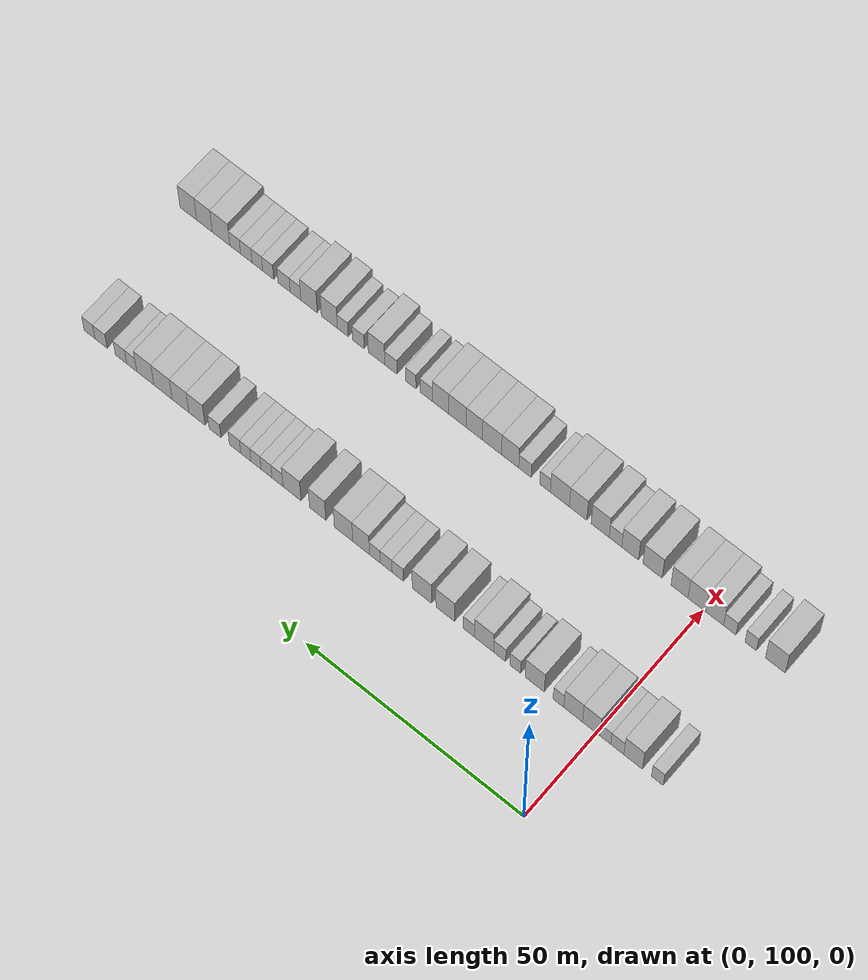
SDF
<sdf version="1.6">
 <world name="default">
  <model name="building_71">
   <static>1</static>
   <pose>25.0000 86.4063 0 0.000000 0.000000 0.000000</pose>
   <link name="link">
    <pose>0 0 3.00 0 0 0</pose>
    <collision name="collision"><geometry><box><size>10.0000 2.6438 6.0000</size></box></geometry></collision>
    <visual name="visual">
     <cast_shadows>0</cast_shadows>
     <geometry><box><size>10.0000 2.6438 6.0000</size></box></geometry>
     <material>
      <script>
       <uri>model://HANNAS_wall/materials/scripts</uri>
       <uri>model://HANNAS_wall/materials/textures</uri>
       <name>vrc/HANNAS_wall</name>
      </script>
     </material>
    </visual>
   </link>
  </model>
  <model name="building_72">
   <static>1</static>
   <pose>25.0000 91.8164 0 0.000000 0.000000 0.000000</pose>
   <link name="link">
    <pose>0 0 4.50 0 0 0</pose>
    <collision name="collision"><geometry><box><size>10.0000 4.1764 9.0000</size></box></geometry></collision>
    <visual name="visual">
     <cast_shadows>0</cast_shadows>
     <geometry><box><size>10.0000 4.1764 9.0000</size></box></geometry>
     <material>
      <script>
       <uri>model://HANNAS_wall/materials/scripts</uri>
       <uri>model://HANNAS_wall/materials/textures</uri>
       <name>vrc/HANNAS_wall</name>
      </script>
     </material>
    </visual>
   </link>
  </model>
  <model name="building_73">
   <static>1</static>
   <pose>25.0000 95.3622 0 0.000000 0.000000 0.000000</pose>
   <link name="link">
    <pose>0 0 3.00 0 0 0</pose>
    <collision name="collision"><geometry><box><size>10.0000 2.9153 6.0000</size></box></geometry></collision>
    <visual name="visual">
     <cast_shadows>0</cast_shadows>
     <geometry><box><size>10.0000 2.9153 6.0000</size></box></geometry>
     <material>
      <script>
       <uri>model://HANNAS_wall/materials/scripts</uri>
       <uri>model://HANNAS_wall/materials/textures</uri>
       <name>vrc/HANNAS_wall</name>
      </script>
     </material>
    </visual>
   </link>
  </model>
  <model name="building_74">
   <static>1</static>
   <pose>25.0000 98.0449 0 0.000000 0.000000 0.000000</pose>
   <link name="link">
    <pose>0 0 3.00 0 0 0</pose>
    <collision name="collision"><geometry><box><size>10.0000 2.4500 6.0000</size></box></geometry></collision>
    <visual name="visual">
     <cast_shadows>0</cast_shadows>
     <geometry><box><size>10.0000 2.4500 6.0000</size></box></geometry>
     <material>
      <script>
       <uri>model://HANNAS_wall/materials/scripts</uri>
       <uri>model://HANNAS_wall/materials/textures</uri>
       <name>vrc/HANNAS_wall</name>
      </script>
     </material>
    </visual>
   </link>
  </model>
  <model name="building_75">
   <static>1</static>
   <pose>25.0000 101.2486 0 0.000000 0.000000 0.000000</pose>
   <link name="link">
    <pose>0 0 4.50 0 0 0</pose>
    <collision name="collision"><geometry><box><size>10.0000 3.9574 9.0000</size></box></geometry></collision>
    <visual name="visual">
     <cast_shadows>0</cast_shadows>
     <geometry><box><size>10.0000 3.9574 9.0000</size></box></geometry>
     <material>
      <script>
       <uri>model://HANNAS_wall/materials/scripts</uri>
       <uri>model://HANNAS_wall/materials/textures</uri>
       <name>vrc/HANNAS_wall</name>
      </script>
     </material>
    </visual>
   </link>
  </model>
  <model name="building_76">
   <static>1</static>
   <pose>25.0000 105.3379 0 0.000000 0.000000 0.000000</pose>
   <link name="link">
    <pose>0 0 4.50 0 0 0</pose>
    <collision name="collision"><geometry><box><size>10.0000 4.2212 9.0000</size></box></geometry></collision>
    <visual name="visual">
     <cast_shadows>0</cast_shadows>
     <geometry><box><size>10.0000 4.2212 9.0000</size></box></geometry>
     <material>
      <script>
       <uri>model://HANNAS_wall/materials/scripts</uri>
       <uri>model://HANNAS_wall/materials/textures</uri>
       <name>vrc/HANNAS_wall</name>
      </script>
     </material>
    </visual>
   </link>
  </model>
  <model name="building_77">
   <static>1</static>
   <pose>25.0000 108.6724 0 0.000000 0.000000 0.000000</pose>
   <link name="link">
    <pose>0 0 3.00 0 0 0</pose>
    <collision name="collision"><geometry><box><size>10.0000 2.4478 6.0000</size></box></geometry></collision>
    <visual name="visual">
     <cast_shadows>0</cast_shadows>
     <geometry><box><size>10.0000 2.4478 6.0000</size></box></geometry>
     <material>
      <script>
       <uri>model://HANNAS_wall/materials/scripts</uri>
       <uri>model://HANNAS_wall/materials/textures</uri>
       <name>vrc/HANNAS_wall</name>
      </script>
     </material>
    </visual>
   </link>
  </model>
  <model name="building_78">
   <static>1</static>
   <pose>25.0000 114.0790 0 0.000000 0.000000 0.000000</pose>
   <link name="link">
    <pose>0 0 4.50 0 0 0</pose>
    <collision name="collision"><geometry><box><size>10.0000 4.3654 9.0000</size></box></geometry></collision>
    <visual name="visual">
     <cast_shadows>0</cast_shadows>
     <geometry><box><size>10.0000 4.3654 9.0000</size></box></geometry>
     <material>
      <script>
       <uri>model://HANNAS_wall/materials/scripts</uri>
       <uri>model://HANNAS_wall/materials/textures</uri>
       <name>vrc/HANNAS_wall</name>
      </script>
     </material>
    </visual>
   </link>
  </model>
  <model name="building_79">
   <static>1</static>
   <pose>25.0000 118.4874 0 0.000000 0.000000 0.000000</pose>
   <link name="link">
    <pose>0 0 3.00 0 0 0</pose>
    <collision name="collision"><geometry><box><size>10.0000 2.4514 6.0000</size></box></geometry></collision>
    <visual name="visual">
     <cast_shadows>0</cast_shadows>
     <geometry><box><size>10.0000 2.4514 6.0000</size></box></geometry>
     <material>
      <script>
       <uri>model://HANNAS_wall/materials/scripts</uri>
       <uri>model://HANNAS_wall/materials/textures</uri>
       <name>vrc/HANNAS_wall</name>
      </script>
     </material>
    </visual>
   </link>
  </model>
  <model name="building_80">
   <static>1</static>
   <pose>25.0000 122.0968 0 0.000000 0.000000 0.000000</pose>
   <link name="link">
    <pose>0 0 3.00 0 0 0</pose>
    <collision name="collision"><geometry><box><size>10.0000 2.7674 6.0000</size></box></geometry></collision>
    <visual name="visual">
     <cast_shadows>0</cast_shadows>
     <geometry><box><size>10.0000 2.7674 6.0000</size></box></geometry>
     <material>
      <script>
       <uri>model://HANNAS_wall/materials/scripts</uri>
       <uri>model://HANNAS_wall/materials/textures</uri>
       <name>vrc/HANNAS_wall</name>
      </script>
     </material>
    </visual>
   </link>
  </model>
  <model name="building_81">
   <static>1</static>
   <pose>25.0000 125.6813 0 0.000000 0.000000 0.000000</pose>
   <link name="link">
    <pose>0 0 4.50 0 0 0</pose>
    <collision name="collision"><geometry><box><size>10.0000 4.4017 9.0000</size></box></geometry></collision>
    <visual name="visual">
     <cast_shadows>0</cast_shadows>
     <geometry><box><size>10.0000 4.4017 9.0000</size></box></geometry>
     <material>
      <script>
       <uri>model://HANNAS_wall/materials/scripts</uri>
       <uri>model://HANNAS_wall/materials/textures</uri>
       <name>vrc/HANNAS_wall</name>
      </script>
     </material>
    </visual>
   </link>
  </model>
  <model name="building_82">
   <static>1</static>
   <pose>25.0000 129.1506 0 0.000000 0.000000 0.000000</pose>
   <link name="link">
    <pose>0 0 3.00 0 0 0</pose>
    <collision name="collision"><geometry><box><size>10.0000 2.5369 6.0000</size></box></geometry></collision>
    <visual name="visual">
     <cast_shadows>0</cast_shadows>
     <geometry><box><size>10.0000 2.5369 6.0000</size></box></geometry>
     <material>
      <script>
       <uri>model://HANNAS_wall/materials/scripts</uri>
       <uri>model://HANNAS_wall/materials/textures</uri>
       <name>vrc/HANNAS_wall</name>
      </script>
     </material>
    </visual>
   </link>
  </model>
  <model name="building_83">
   <static>1</static>
   <pose>25.0000 134.5906 0 0.000000 0.000000 0.000000</pose>
   <link name="link">
    <pose>0 0 4.50 0 0 0</pose>
    <collision name="collision"><geometry><box><size>10.0000 4.3431 9.0000</size></box></geometry></collision>
    <visual name="visual">
     <cast_shadows>0</cast_shadows>
     <geometry><box><size>10.0000 4.3431 9.0000</size></box></geometry>
     <material>
      <script>
       <uri>model://HANNAS_wall/materials/scripts</uri>
       <uri>model://HANNAS_wall/materials/textures</uri>
       <name>vrc/HANNAS_wall</name>
      </script>
     </material>
    </visual>
   </link>
  </model>
  <model name="building_84">
   <static>1</static>
   <pose>25.0000 140.0104 0 0.000000 0.000000 0.000000</pose>
   <link name="link">
    <pose>0 0 4.50 0 0 0</pose>
    <collision name="collision"><geometry><box><size>10.0000 4.4965 9.0000</size></box></geometry></collision>
    <visual name="visual">
     <cast_shadows>0</cast_shadows>
     <geometry><box><size>10.0000 4.4965 9.0000</size></box></geometry>
     <material>
      <script>
       <uri>model://HANNAS_wall/materials/scripts</uri>
       <uri>model://HANNAS_wall/materials/textures</uri>
       <name>vrc/HANNAS_wall</name>
      </script>
     </material>
    </visual>
   </link>
  </model>
  <model name="building_85">
   <static>1</static>
   <pose>25.0000 145.6012 0 0.000000 0.000000 0.000000</pose>
   <link name="link">
    <pose>0 0 3.00 0 0 0</pose>
    <collision name="collision"><geometry><box><size>10.0000 2.6851 6.0000</size></box></geometry></collision>
    <visual name="visual">
     <cast_shadows>0</cast_shadows>
     <geometry><box><size>10.0000 2.6851 6.0000</size></box></geometry>
     <material>
      <script>
       <uri>model://HANNAS_wall/materials/scripts</uri>
       <uri>model://HANNAS_wall/materials/textures</uri>
       <name>vrc/HANNAS_wall</name>
      </script>
     </material>
    </visual>
   </link>
  </model>
  <model name="building_86">
   <static>1</static>
   <pose>25.0000 148.3291 0 0.000000 0.000000 0.000000</pose>
   <link name="link">
    <pose>0 0 3.00 0 0 0</pose>
    <collision name="collision"><geometry><box><size>10.0000 2.7708 6.0000</size></box></geometry></collision>
    <visual name="visual">
     <cast_shadows>0</cast_shadows>
     <geometry><box><size>10.0000 2.7708 6.0000</size></box></geometry>
     <material>
      <script>
       <uri>model://HANNAS_wall/materials/scripts</uri>
       <uri>model://HANNAS_wall/materials/textures</uri>
       <name>vrc/HANNAS_wall</name>
      </script>
     </material>
    </visual>
   </link>
  </model>
  <model name="building_87">
   <static>1</static>
   <pose>25.0000 150.9527 0 0.000000 0.000000 0.000000</pose>
   <link name="link">
    <pose>0 0 3.00 0 0 0</pose>
    <collision name="collision"><geometry><box><size>10.0000 2.4766 6.0000</size></box></geometry></collision>
    <visual name="visual">
     <cast_shadows>0</cast_shadows>
     <geometry><box><size>10.0000 2.4766 6.0000</size></box></geometry>
     <material>
      <script>
       <uri>model://HANNAS_wall/materials/scripts</uri>
       <uri>model://HANNAS_wall/materials/textures</uri>
       <name>vrc/HANNAS_wall</name>
      </script>
     </material>
    </visual>
   </link>
  </model>
  <model name="building_88">
   <static>1</static>
   <pose>25.0000 154.1577 0 0.000000 0.000000 0.000000</pose>
   <link name="link">
    <pose>0 0 4.50 0 0 0</pose>
    <collision name="collision"><geometry><box><size>10.0000 3.9335 9.0000</size></box></geometry></collision>
    <visual name="visual">
     <cast_shadows>0</cast_shadows>
     <geometry><box><size>10.0000 3.9335 9.0000</size></box></geometry>
     <material>
      <script>
       <uri>model://HANNAS_wall/materials/scripts</uri>
       <uri>model://HANNAS_wall/materials/textures</uri>
       <name>vrc/HANNAS_wall</name>
      </script>
     </material>
    </visual>
   </link>
  </model>
  <model name="building_89">
   <static>1</static>
   <pose>25.0000 158.2911 0 0.000000 0.000000 0.000000</pose>
   <link name="link">
    <pose>0 0 4.50 0 0 0</pose>
    <collision name="collision"><geometry><box><size>10.0000 4.3332 9.0000</size></box></geometry></collision>
    <visual name="visual">
     <cast_shadows>0</cast_shadows>
     <geometry><box><size>10.0000 4.3332 9.0000</size></box></geometry>
     <material>
      <script>
       <uri>model://HANNAS_wall/materials/scripts</uri>
       <uri>model://HANNAS_wall/materials/textures</uri>
       <name>vrc/HANNAS_wall</name>
      </script>
     </material>
    </visual>
   </link>
  </model>
  <model name="building_90">
   <static>1</static>
   <pose>25.0000 164.3925 0 0.000000 0.000000 0.000000</pose>
   <link name="link">
    <pose>0 0 4.50 0 0 0</pose>
    <collision name="collision"><geometry><box><size>10.0000 3.8695 9.0000</size></box></geometry></collision>
    <visual name="visual">
     <cast_shadows>0</cast_shadows>
     <geometry><box><size>10.0000 3.8695 9.0000</size></box></geometry>
     <material>
      <script>
       <uri>model://HANNAS_wall/materials/scripts</uri>
       <uri>model://HANNAS_wall/materials/textures</uri>
       <name>vrc/HANNAS_wall</name>
      </script>
     </material>
    </visual>
   </link>
  </model>
  <model name="building_91">
   <static>1</static>
   <pose>25.0000 170.4602 0 0.000000 0.000000 0.000000</pose>
   <link name="link">
    <pose>0 0 4.50 0 0 0</pose>
    <collision name="collision"><geometry><box><size>10.0000 4.2661 9.0000</size></box></geometry></collision>
    <visual name="visual">
     <cast_shadows>0</cast_shadows>
     <geometry><box><size>10.0000 4.2661 9.0000</size></box></geometry>
     <material>
      <script>
       <uri>model://HANNAS_wall/materials/scripts</uri>
       <uri>model://HANNAS_wall/materials/textures</uri>
       <name>vrc/HANNAS_wall</name>
      </script>
     </material>
    </visual>
   </link>
  </model>
  <model name="building_92">
   <static>1</static>
   <pose>25.0000 173.9139 0 0.000000 0.000000 0.000000</pose>
   <link name="link">
    <pose>0 0 3.00 0 0 0</pose>
    <collision name="collision"><geometry><box><size>10.0000 2.6412 6.0000</size></box></geometry></collision>
    <visual name="visual">
     <cast_shadows>0</cast_shadows>
     <geometry><box><size>10.0000 2.6412 6.0000</size></box></geometry>
     <material>
      <script>
       <uri>model://HANNAS_wall/materials/scripts</uri>
       <uri>model://HANNAS_wall/materials/textures</uri>
       <name>vrc/HANNAS_wall</name>
      </script>
     </material>
    </visual>
   </link>
  </model>
  <model name="building_93">
   <static>1</static>
   <pose>25.0000 176.5115 0 0.000000 0.000000 0.000000</pose>
   <link name="link">
    <pose>0 0 3.00 0 0 0</pose>
    <collision name="collision"><geometry><box><size>10.0000 2.5540 6.0000</size></box></geometry></collision>
    <visual name="visual">
     <cast_shadows>0</cast_shadows>
     <geometry><box><size>10.0000 2.5540 6.0000</size></box></geometry>
     <material>
      <script>
       <uri>model://HANNAS_wall/materials/scripts</uri>
       <uri>model://HANNAS_wall/materials/textures</uri>
       <name>vrc/HANNAS_wall</name>
      </script>
     </material>
    </visual>
   </link>
  </model>
  <model name="building_94">
   <static>1</static>
   <pose>25.0000 179.0015 0 0.000000 0.000000 0.000000</pose>
   <link name="link">
    <pose>0 0 3.00 0 0 0</pose>
    <collision name="collision"><geometry><box><size>10.0000 2.4260 6.0000</size></box></geometry></collision>
    <visual name="visual">
     <cast_shadows>0</cast_shadows>
     <geometry><box><size>10.0000 2.4260 6.0000</size></box></geometry>
     <material>
      <script>
       <uri>model://HANNAS_wall/materials/scripts</uri>
       <uri>model://HANNAS_wall/materials/textures</uri>
       <name>vrc/HANNAS_wall</name>
      </script>
     </material>
    </visual>
   </link>
  </model>
  <model name="building_95">
   <static>1</static>
   <pose>25.0000 181.4482 0 0.000000 0.000000 0.000000</pose>
   <link name="link">
    <pose>0 0 3.00 0 0 0</pose>
    <collision name="collision"><geometry><box><size>10.0000 2.4674 6.0000</size></box></geometry></collision>
    <visual name="visual">
     <cast_shadows>0</cast_shadows>
     <geometry><box><size>10.0000 2.4674 6.0000</size></box></geometry>
     <material>
      <script>
       <uri>model://HANNAS_wall/materials/scripts</uri>
       <uri>model://HANNAS_wall/materials/textures</uri>
       <name>vrc/HANNAS_wall</name>
      </script>
     </material>
    </visual>
   </link>
  </model>
  <model name="building_96">
   <static>1</static>
   <pose>25.0000 184.0438 0 0.000000 0.000000 0.000000</pose>
   <link name="link">
    <pose>0 0 3.00 0 0 0</pose>
    <collision name="collision"><geometry><box><size>10.0000 2.7239 6.0000</size></box></geometry></collision>
    <visual name="visual">
     <cast_shadows>0</cast_shadows>
     <geometry><box><size>10.0000 2.7239 6.0000</size></box></geometry>
     <material>
      <script>
       <uri>model://HANNAS_wall/materials/scripts</uri>
       <uri>model://HANNAS_wall/materials/textures</uri>
       <name>vrc/HANNAS_wall</name>
      </script>
     </material>
    </visual>
   </link>
  </model>
  <model name="building_97">
   <static>1</static>
   <pose>25.0000 188.8336 0 0.000000 0.000000 0.000000</pose>
   <link name="link">
    <pose>0 0 3.00 0 0 0</pose>
    <collision name="collision"><geometry><box><size>10.0000 2.8556 6.0000</size></box></geometry></collision>
    <visual name="visual">
     <cast_shadows>0</cast_shadows>
     <geometry><box><size>10.0000 2.8556 6.0000</size></box></geometry>
     <material>
      <script>
       <uri>model://HANNAS_wall/materials/scripts</uri>
       <uri>model://HANNAS_wall/materials/textures</uri>
       <name>vrc/HANNAS_wall</name>
      </script>
     </material>
    </visual>
   </link>
  </model>
  <model name="building_98">
   <static>1</static>
   <pose>25.0000 193.2005 0 0.000000 0.000000 0.000000</pose>
   <link name="link">
    <pose>0 0 4.50 0 0 0</pose>
    <collision name="collision"><geometry><box><size>10.0000 3.8783 9.0000</size></box></geometry></collision>
    <visual name="visual">
     <cast_shadows>0</cast_shadows>
     <geometry><box><size>10.0000 3.8783 9.0000</size></box></geometry>
     <material>
      <script>
       <uri>model://HANNAS_wall/materials/scripts</uri>
       <uri>model://HANNAS_wall/materials/textures</uri>
       <name>vrc/HANNAS_wall</name>
      </script>
     </material>
    </visual>
   </link>
  </model>
  <model name="building_99">
   <static>1</static>
   <pose>25.0000 197.1653 0 0.000000 0.000000 0.000000</pose>
   <link name="link">
    <pose>0 0 4.50 0 0 0</pose>
    <collision name="collision"><geometry><box><size>10.0000 4.0513 9.0000</size></box></geometry></collision>
    <visual name="visual">
     <cast_shadows>0</cast_shadows>
     <geometry><box><size>10.0000 4.0513 9.0000</size></box></geometry>
     <material>
      <script>
       <uri>model://HANNAS_wall/materials/scripts</uri>
       <uri>model://HANNAS_wall/materials/textures</uri>
       <name>vrc/HANNAS_wall</name>
      </script>
     </material>
    </visual>
   </link>
  </model>
  <model name="building_100">
   <static>1</static>
   <pose>25.0000 201.3958 0 0.000000 0.000000 0.000000</pose>
   <link name="link">
    <pose>0 0 4.50 0 0 0</pose>
    <collision name="collision"><geometry><box><size>10.0000 4.4098 9.0000</size></box></geometry></collision>
    <visual name="visual">
     <cast_shadows>0</cast_shadows>
     <geometry><box><size>10.0000 4.4098 9.0000</size></box></geometry>
     <material>
      <script>
       <uri>model://HANNAS_wall/materials/scripts</uri>
       <uri>model://HANNAS_wall/materials/textures</uri>
       <name>vrc/HANNAS_wall</name>
      </script>
     </material>
    </visual>
   </link>
  </model>
  <model name="building_101">
   <static>1</static>
   <pose>25.0000 205.6873 0 0.000000 0.000000 0.000000</pose>
   <link name="link">
    <pose>0 0 4.50 0 0 0</pose>
    <collision name="collision"><geometry><box><size>10.0000 4.1732 9.0000</size></box></geometry></collision>
    <visual name="visual">
     <cast_shadows>0</cast_shadows>
     <geometry><box><size>10.0000 4.1732 9.0000</size></box></geometry>
     <material>
      <script>
       <uri>model://HANNAS_wall/materials/scripts</uri>
       <uri>model://HANNAS_wall/materials/textures</uri>
       <name>vrc/HANNAS_wall</name>
      </script>
     </material>
    </visual>
   </link>
  </model>
  <model name="building_102">
   <static>1</static>
   <pose>25.0000 209.0159 0 0.000000 0.000000 0.000000</pose>
   <link name="link">
    <pose>0 0 3.00 0 0 0</pose>
    <collision name="collision"><geometry><box><size>10.0000 2.4840 6.0000</size></box></geometry></collision>
    <visual name="visual">
     <cast_shadows>0</cast_shadows>
     <geometry><box><size>10.0000 2.4840 6.0000</size></box></geometry>
     <material>
      <script>
       <uri>model://HANNAS_wall/materials/scripts</uri>
       <uri>model://HANNAS_wall/materials/textures</uri>
       <name>vrc/HANNAS_wall</name>
      </script>
     </material>
    </visual>
   </link>
  </model>
  <model name="building_103">
   <static>1</static>
   <pose>25.0000 211.6310 0 0.000000 0.000000 0.000000</pose>
   <link name="link">
    <pose>0 0 3.00 0 0 0</pose>
    <collision name="collision"><geometry><box><size>10.0000 2.7462 6.0000</size></box></geometry></collision>
    <visual name="visual">
     <cast_shadows>0</cast_shadows>
     <geometry><box><size>10.0000 2.7462 6.0000</size></box></geometry>
     <material>
      <script>
       <uri>model://HANNAS_wall/materials/scripts</uri>
       <uri>model://HANNAS_wall/materials/textures</uri>
       <name>vrc/HANNAS_wall</name>
      </script>
     </material>
    </visual>
   </link>
  </model>
  <model name="building_104">
   <static>1</static>
   <pose>25.0000 216.4798 0 0.000000 0.000000 0.000000</pose>
   <link name="link">
    <pose>0 0 3.00 0 0 0</pose>
    <collision name="collision"><geometry><box><size>10.0000 2.9512 6.0000</size></box></geometry></collision>
    <visual name="visual">
     <cast_shadows>0</cast_shadows>
     <geometry><box><size>10.0000 2.9512 6.0000</size></box></geometry>
     <material>
      <script>
       <uri>model://HANNAS_wall/materials/scripts</uri>
       <uri>model://HANNAS_wall/materials/textures</uri>
       <name>vrc/HANNAS_wall</name>
      </script>
     </material>
    </visual>
   </link>
  </model>
  <model name="building_105">
   <static>1</static>
   <pose>25.0000 219.3041 0 0.000000 0.000000 0.000000</pose>
   <link name="link">
    <pose>0 0 3.00 0 0 0</pose>
    <collision name="collision"><geometry><box><size>10.0000 2.6975 6.0000</size></box></geometry></collision>
    <visual name="visual">
     <cast_shadows>0</cast_shadows>
     <geometry><box><size>10.0000 2.6975 6.0000</size></box></geometry>
     <material>
      <script>
       <uri>model://HANNAS_wall/materials/scripts</uri>
       <uri>model://HANNAS_wall/materials/textures</uri>
       <name>vrc/HANNAS_wall</name>
      </script>
     </material>
    </visual>
   </link>
  </model>
  <model name="building_178">
   <static>1</static>
   <pose>55.0000 83.8352 0 0.000000 0.000000 0.000000</pose>
   <link name="link">
    <pose>0 0 4.50 0 0 0</pose>
    <collision name="collision"><geometry><box><size>10.0000 4.4395 9.0000</size></box></geometry></collision>
    <visual name="visual">
     <cast_shadows>0</cast_shadows>
     <geometry><box><size>10.0000 4.4395 9.0000</size></box></geometry>
     <material>
      <script>
       <uri>model://HANNAS_wall/materials/scripts</uri>
       <uri>model://HANNAS_wall/materials/textures</uri>
       <name>vrc/HANNAS_wall</name>
      </script>
     </material>
    </visual>
   </link>
  </model>
  <model name="building_179">
   <static>1</static>
   <pose>55.0000 89.3561 0 0.000000 0.000000 0.000000</pose>
   <link name="link">
    <pose>0 0 3.00 0 0 0</pose>
    <collision name="collision"><geometry><box><size>10.0000 2.6024 6.0000</size></box></geometry></collision>
    <visual name="visual">
     <cast_shadows>0</cast_shadows>
     <geometry><box><size>10.0000 2.6024 6.0000</size></box></geometry>
     <material>
      <script>
       <uri>model://HANNAS_wall/materials/scripts</uri>
       <uri>model://HANNAS_wall/materials/textures</uri>
       <name>vrc/HANNAS_wall</name>
      </script>
     </material>
    </visual>
   </link>
  </model>
  <model name="building_180">
   <static>1</static>
   <pose>55.0000 94.0768 0 0.000000 0.000000 0.000000</pose>
   <link name="link">
    <pose>0 0 3.00 0 0 0</pose>
    <collision name="collision"><geometry><box><size>10.0000 2.8389 6.0000</size></box></geometry></collision>
    <visual name="visual">
     <cast_shadows>0</cast_shadows>
     <geometry><box><size>10.0000 2.8389 6.0000</size></box></geometry>
     <material>
      <script>
       <uri>model://HANNAS_wall/materials/scripts</uri>
       <uri>model://HANNAS_wall/materials/textures</uri>
       <name>vrc/HANNAS_wall</name>
      </script>
     </material>
    </visual>
   </link>
  </model>
  <model name="building_181">
   <static>1</static>
   <pose>55.0000 97.4906 0 0.000000 0.000000 0.000000</pose>
   <link name="link">
    <pose>0 0 4.50 0 0 0</pose>
    <collision name="collision"><geometry><box><size>10.0000 3.9888 9.0000</size></box></geometry></collision>
    <visual name="visual">
     <cast_shadows>0</cast_shadows>
     <geometry><box><size>10.0000 3.9888 9.0000</size></box></geometry>
     <material>
      <script>
       <uri>model://HANNAS_wall/materials/scripts</uri>
       <uri>model://HANNAS_wall/materials/textures</uri>
       <name>vrc/HANNAS_wall</name>
      </script>
     </material>
    </visual>
   </link>
  </model>
  <model name="building_182">
   <static>1</static>
   <pose>55.0000 101.5181 0 0.000000 0.000000 0.000000</pose>
   <link name="link">
    <pose>0 0 4.50 0 0 0</pose>
    <collision name="collision"><geometry><box><size>10.0000 4.0663 9.0000</size></box></geometry></collision>
    <visual name="visual">
     <cast_shadows>0</cast_shadows>
     <geometry><box><size>10.0000 4.0663 9.0000</size></box></geometry>
     <material>
      <script>
       <uri>model://HANNAS_wall/materials/scripts</uri>
       <uri>model://HANNAS_wall/materials/textures</uri>
       <name>vrc/HANNAS_wall</name>
      </script>
     </material>
    </visual>
   </link>
  </model>
  <model name="building_183">
   <static>1</static>
   <pose>55.0000 105.4807 0 0.000000 0.000000 0.000000</pose>
   <link name="link">
    <pose>0 0 4.50 0 0 0</pose>
    <collision name="collision"><geometry><box><size>10.0000 3.8589 9.0000</size></box></geometry></collision>
    <visual name="visual">
     <cast_shadows>0</cast_shadows>
     <geometry><box><size>10.0000 3.8589 9.0000</size></box></geometry>
     <material>
      <script>
       <uri>model://HANNAS_wall/materials/scripts</uri>
       <uri>model://HANNAS_wall/materials/textures</uri>
       <name>vrc/HANNAS_wall</name>
      </script>
     </material>
    </visual>
   </link>
  </model>
  <model name="building_184">
   <static>1</static>
   <pose>55.0000 111.6093 0 0.000000 0.000000 0.000000</pose>
   <link name="link">
    <pose>0 0 4.50 0 0 0</pose>
    <collision name="collision"><geometry><box><size>10.0000 4.3984 9.0000</size></box></geometry></collision>
    <visual name="visual">
     <cast_shadows>0</cast_shadows>
     <geometry><box><size>10.0000 4.3984 9.0000</size></box></geometry>
     <material>
      <script>
       <uri>model://HANNAS_wall/materials/scripts</uri>
       <uri>model://HANNAS_wall/materials/textures</uri>
       <name>vrc/HANNAS_wall</name>
      </script>
     </material>
    </visual>
   </link>
  </model>
  <model name="building_185">
   <static>1</static>
   <pose>55.0000 116.7326 0 0.000000 0.000000 0.000000</pose>
   <link name="link">
    <pose>0 0 4.50 0 0 0</pose>
    <collision name="collision"><geometry><box><size>10.0000 3.8481 9.0000</size></box></geometry></collision>
    <visual name="visual">
     <cast_shadows>0</cast_shadows>
     <geometry><box><size>10.0000 3.8481 9.0000</size></box></geometry>
     <material>
      <script>
       <uri>model://HANNAS_wall/materials/scripts</uri>
       <uri>model://HANNAS_wall/materials/textures</uri>
       <name>vrc/HANNAS_wall</name>
      </script>
     </material>
    </visual>
   </link>
  </model>
  <model name="building_186">
   <static>1</static>
   <pose>55.0000 120.1015 0 0.000000 0.000000 0.000000</pose>
   <link name="link">
    <pose>0 0 3.00 0 0 0</pose>
    <collision name="collision"><geometry><box><size>10.0000 2.8897 6.0000</size></box></geometry></collision>
    <visual name="visual">
     <cast_shadows>0</cast_shadows>
     <geometry><box><size>10.0000 2.8897 6.0000</size></box></geometry>
     <material>
      <script>
       <uri>model://HANNAS_wall/materials/scripts</uri>
       <uri>model://HANNAS_wall/materials/textures</uri>
       <name>vrc/HANNAS_wall</name>
      </script>
     </material>
    </visual>
   </link>
  </model>
  <model name="building_187">
   <static>1</static>
   <pose>55.0000 123.6165 0 0.000000 0.000000 0.000000</pose>
   <link name="link">
    <pose>0 0 4.50 0 0 0</pose>
    <collision name="collision"><geometry><box><size>10.0000 4.1403 9.0000</size></box></geometry></collision>
    <visual name="visual">
     <cast_shadows>0</cast_shadows>
     <geometry><box><size>10.0000 4.1403 9.0000</size></box></geometry>
     <material>
      <script>
       <uri>model://HANNAS_wall/materials/scripts</uri>
       <uri>model://HANNAS_wall/materials/textures</uri>
       <name>vrc/HANNAS_wall</name>
      </script>
     </material>
    </visual>
   </link>
  </model>
  <model name="building_188">
   <static>1</static>
   <pose>55.0000 128.7095 0 0.000000 0.000000 0.000000</pose>
   <link name="link">
    <pose>0 0 4.50 0 0 0</pose>
    <collision name="collision"><geometry><box><size>10.0000 4.0458 9.0000</size></box></geometry></collision>
    <visual name="visual">
     <cast_shadows>0</cast_shadows>
     <geometry><box><size>10.0000 4.0458 9.0000</size></box></geometry>
     <material>
      <script>
       <uri>model://HANNAS_wall/materials/scripts</uri>
       <uri>model://HANNAS_wall/materials/textures</uri>
       <name>vrc/HANNAS_wall</name>
      </script>
     </material>
    </visual>
   </link>
  </model>
  <model name="building_189">
   <static>1</static>
   <pose>55.0000 132.9395 0 0.000000 0.000000 0.000000</pose>
   <link name="link">
    <pose>0 0 4.50 0 0 0</pose>
    <collision name="collision"><geometry><box><size>10.0000 4.4141 9.0000</size></box></geometry></collision>
    <visual name="visual">
     <cast_shadows>0</cast_shadows>
     <geometry><box><size>10.0000 4.4141 9.0000</size></box></geometry>
     <material>
      <script>
       <uri>model://HANNAS_wall/materials/scripts</uri>
       <uri>model://HANNAS_wall/materials/textures</uri>
       <name>vrc/HANNAS_wall</name>
      </script>
     </material>
    </visual>
   </link>
  </model>
  <model name="building_190">
   <static>1</static>
   <pose>55.0000 136.3740 0 0.000000 0.000000 0.000000</pose>
   <link name="link">
    <pose>0 0 3.00 0 0 0</pose>
    <collision name="collision"><geometry><box><size>10.0000 2.4550 6.0000</size></box></geometry></collision>
    <visual name="visual">
     <cast_shadows>0</cast_shadows>
     <geometry><box><size>10.0000 2.4550 6.0000</size></box></geometry>
     <material>
      <script>
       <uri>model://HANNAS_wall/materials/scripts</uri>
       <uri>model://HANNAS_wall/materials/textures</uri>
       <name>vrc/HANNAS_wall</name>
      </script>
     </material>
    </visual>
   </link>
  </model>
  <model name="building_191">
   <static>1</static>
   <pose>55.0000 141.0436 0 0.000000 0.000000 0.000000</pose>
   <link name="link">
    <pose>0 0 3.00 0 0 0</pose>
    <collision name="collision"><geometry><box><size>10.0000 2.8841 6.0000</size></box></geometry></collision>
    <visual name="visual">
     <cast_shadows>0</cast_shadows>
     <geometry><box><size>10.0000 2.8841 6.0000</size></box></geometry>
     <material>
      <script>
       <uri>model://HANNAS_wall/materials/scripts</uri>
       <uri>model://HANNAS_wall/materials/textures</uri>
       <name>vrc/HANNAS_wall</name>
      </script>
     </material>
    </visual>
   </link>
  </model>
  <model name="building_192">
   <static>1</static>
   <pose>55.0000 144.5048 0 0.000000 0.000000 0.000000</pose>
   <link name="link">
    <pose>0 0 4.50 0 0 0</pose>
    <collision name="collision"><geometry><box><size>10.0000 4.0383 9.0000</size></box></geometry></collision>
    <visual name="visual">
     <cast_shadows>0</cast_shadows>
     <geometry><box><size>10.0000 4.0383 9.0000</size></box></geometry>
     <material>
      <script>
       <uri>model://HANNAS_wall/materials/scripts</uri>
       <uri>model://HANNAS_wall/materials/textures</uri>
       <name>vrc/HANNAS_wall</name>
      </script>
     </material>
    </visual>
   </link>
  </model>
  <model name="building_193">
   <static>1</static>
   <pose>55.0000 148.7607 0 0.000000 0.000000 0.000000</pose>
   <link name="link">
    <pose>0 0 4.50 0 0 0</pose>
    <collision name="collision"><geometry><box><size>10.0000 4.4735 9.0000</size></box></geometry></collision>
    <visual name="visual">
     <cast_shadows>0</cast_shadows>
     <geometry><box><size>10.0000 4.4735 9.0000</size></box></geometry>
     <material>
      <script>
       <uri>model://HANNAS_wall/materials/scripts</uri>
       <uri>model://HANNAS_wall/materials/textures</uri>
       <name>vrc/HANNAS_wall</name>
      </script>
     </material>
    </visual>
   </link>
  </model>
  <model name="building_194">
   <static>1</static>
   <pose>55.0000 152.8836 0 0.000000 0.000000 0.000000</pose>
   <link name="link">
    <pose>0 0 4.50 0 0 0</pose>
    <collision name="collision"><geometry><box><size>10.0000 3.7723 9.0000</size></box></geometry></collision>
    <visual name="visual">
     <cast_shadows>0</cast_shadows>
     <geometry><box><size>10.0000 3.7723 9.0000</size></box></geometry>
     <material>
      <script>
       <uri>model://HANNAS_wall/materials/scripts</uri>
       <uri>model://HANNAS_wall/materials/textures</uri>
       <name>vrc/HANNAS_wall</name>
      </script>
     </material>
    </visual>
   </link>
  </model>
  <model name="building_195">
   <static>1</static>
   <pose>55.0000 156.8517 0 0.000000 0.000000 0.000000</pose>
   <link name="link">
    <pose>0 0 4.50 0 0 0</pose>
    <collision name="collision"><geometry><box><size>10.0000 4.1640 9.0000</size></box></geometry></collision>
    <visual name="visual">
     <cast_shadows>0</cast_shadows>
     <geometry><box><size>10.0000 4.1640 9.0000</size></box></geometry>
     <material>
      <script>
       <uri>model://HANNAS_wall/materials/scripts</uri>
       <uri>model://HANNAS_wall/materials/textures</uri>
       <name>vrc/HANNAS_wall</name>
      </script>
     </material>
    </visual>
   </link>
  </model>
  <model name="building_196">
   <static>1</static>
   <pose>55.0000 160.8657 0 0.000000 0.000000 0.000000</pose>
   <link name="link">
    <pose>0 0 4.50 0 0 0</pose>
    <collision name="collision"><geometry><box><size>10.0000 3.8641 9.0000</size></box></geometry></collision>
    <visual name="visual">
     <cast_shadows>0</cast_shadows>
     <geometry><box><size>10.0000 3.8641 9.0000</size></box></geometry>
     <material>
      <script>
       <uri>model://HANNAS_wall/materials/scripts</uri>
       <uri>model://HANNAS_wall/materials/textures</uri>
       <name>vrc/HANNAS_wall</name>
      </script>
     </material>
    </visual>
   </link>
  </model>
  <model name="building_197">
   <static>1</static>
   <pose>55.0000 164.2373 0 0.000000 0.000000 0.000000</pose>
   <link name="link">
    <pose>0 0 3.00 0 0 0</pose>
    <collision name="collision"><geometry><box><size>10.0000 2.8792 6.0000</size></box></geometry></collision>
    <visual name="visual">
     <cast_shadows>0</cast_shadows>
     <geometry><box><size>10.0000 2.8792 6.0000</size></box></geometry>
     <material>
      <script>
       <uri>model://HANNAS_wall/materials/scripts</uri>
       <uri>model://HANNAS_wall/materials/textures</uri>
       <name>vrc/HANNAS_wall</name>
      </script>
     </material>
    </visual>
   </link>
  </model>
  <model name="building_198">
   <static>1</static>
   <pose>55.0000 167.9288 0 0.000000 0.000000 0.000000</pose>
   <link name="link">
    <pose>0 0 3.00 0 0 0</pose>
    <collision name="collision"><geometry><box><size>10.0000 2.5037 6.0000</size></box></geometry></collision>
    <visual name="visual">
     <cast_shadows>0</cast_shadows>
     <geometry><box><size>10.0000 2.5037 6.0000</size></box></geometry>
     <material>
      <script>
       <uri>model://HANNAS_wall/materials/scripts</uri>
       <uri>model://HANNAS_wall/materials/textures</uri>
       <name>vrc/HANNAS_wall</name>
      </script>
     </material>
    </visual>
   </link>
  </model>
  <model name="building_199">
   <static>1</static>
   <pose>55.0000 172.6385 0 0.000000 0.000000 0.000000</pose>
   <link name="link">
    <pose>0 0 3.00 0 0 0</pose>
    <collision name="collision"><geometry><box><size>10.0000 2.9156 6.0000</size></box></geometry></collision>
    <visual name="visual">
     <cast_shadows>0</cast_shadows>
     <geometry><box><size>10.0000 2.9156 6.0000</size></box></geometry>
     <material>
      <script>
       <uri>model://HANNAS_wall/materials/scripts</uri>
       <uri>model://HANNAS_wall/materials/textures</uri>
       <name>vrc/HANNAS_wall</name>
      </script>
     </material>
    </visual>
   </link>
  </model>
  <model name="building_200">
   <static>1</static>
   <pose>55.0000 176.0665 0 0.000000 0.000000 0.000000</pose>
   <link name="link">
    <pose>0 0 4.50 0 0 0</pose>
    <collision name="collision"><geometry><box><size>10.0000 3.9404 9.0000</size></box></geometry></collision>
    <visual name="visual">
     <cast_shadows>0</cast_shadows>
     <geometry><box><size>10.0000 3.9404 9.0000</size></box></geometry>
     <material>
      <script>
       <uri>model://HANNAS_wall/materials/scripts</uri>
       <uri>model://HANNAS_wall/materials/textures</uri>
       <name>vrc/HANNAS_wall</name>
      </script>
     </material>
    </visual>
   </link>
  </model>
  <model name="building_201">
   <static>1</static>
   <pose>55.0000 180.4309 0 0.000000 0.000000 0.000000</pose>
   <link name="link">
    <pose>0 0 3.00 0 0 0</pose>
    <collision name="collision"><geometry><box><size>10.0000 2.7885 6.0000</size></box></geometry></collision>
    <visual name="visual">
     <cast_shadows>0</cast_shadows>
     <geometry><box><size>10.0000 2.7885 6.0000</size></box></geometry>
     <material>
      <script>
       <uri>model://HANNAS_wall/materials/scripts</uri>
       <uri>model://HANNAS_wall/materials/textures</uri>
       <name>vrc/HANNAS_wall</name>
      </script>
     </material>
    </visual>
   </link>
  </model>
  <model name="building_202">
   <static>1</static>
   <pose>55.0000 184.1377 0 0.000000 0.000000 0.000000</pose>
   <link name="link">
    <pose>0 0 3.00 0 0 0</pose>
    <collision name="collision"><geometry><box><size>10.0000 2.6252 6.0000</size></box></geometry></collision>
    <visual name="visual">
     <cast_shadows>0</cast_shadows>
     <geometry><box><size>10.0000 2.6252 6.0000</size></box></geometry>
     <material>
      <script>
       <uri>model://HANNAS_wall/materials/scripts</uri>
       <uri>model://HANNAS_wall/materials/textures</uri>
       <name>vrc/HANNAS_wall</name>
      </script>
     </material>
    </visual>
   </link>
  </model>
  <model name="building_203">
   <static>1</static>
   <pose>55.0000 187.3812 0 0.000000 0.000000 0.000000</pose>
   <link name="link">
    <pose>0 0 4.50 0 0 0</pose>
    <collision name="collision"><geometry><box><size>10.0000 3.8618 9.0000</size></box></geometry></collision>
    <visual name="visual">
     <cast_shadows>0</cast_shadows>
     <geometry><box><size>10.0000 3.8618 9.0000</size></box></geometry>
     <material>
      <script>
       <uri>model://HANNAS_wall/materials/scripts</uri>
       <uri>model://HANNAS_wall/materials/textures</uri>
       <name>vrc/HANNAS_wall</name>
      </script>
     </material>
    </visual>
   </link>
  </model>
  <model name="building_204">
   <static>1</static>
   <pose>55.0000 192.2868 0 0.000000 0.000000 0.000000</pose>
   <link name="link">
    <pose>0 0 4.50 0 0 0</pose>
    <collision name="collision"><geometry><box><size>10.0000 3.9492 9.0000</size></box></geometry></collision>
    <visual name="visual">
     <cast_shadows>0</cast_shadows>
     <geometry><box><size>10.0000 3.9492 9.0000</size></box></geometry>
     <material>
      <script>
       <uri>model://HANNAS_wall/materials/scripts</uri>
       <uri>model://HANNAS_wall/materials/textures</uri>
       <name>vrc/HANNAS_wall</name>
      </script>
     </material>
    </visual>
   </link>
  </model>
  <model name="building_205">
   <static>1</static>
   <pose>55.0000 195.5659 0 0.000000 0.000000 0.000000</pose>
   <link name="link">
    <pose>0 0 3.00 0 0 0</pose>
    <collision name="collision"><geometry><box><size>10.0000 2.6091 6.0000</size></box></geometry></collision>
    <visual name="visual">
     <cast_shadows>0</cast_shadows>
     <geometry><box><size>10.0000 2.6091 6.0000</size></box></geometry>
     <material>
      <script>
       <uri>model://HANNAS_wall/materials/scripts</uri>
       <uri>model://HANNAS_wall/materials/textures</uri>
       <name>vrc/HANNAS_wall</name>
      </script>
     </material>
    </visual>
   </link>
  </model>
  <model name="building_206">
   <static>1</static>
   <pose>55.0000 198.3539 0 0.000000 0.000000 0.000000</pose>
   <link name="link">
    <pose>0 0 3.00 0 0 0</pose>
    <collision name="collision"><geometry><box><size>10.0000 2.9667 6.0000</size></box></geometry></collision>
    <visual name="visual">
     <cast_shadows>0</cast_shadows>
     <geometry><box><size>10.0000 2.9667 6.0000</size></box></geometry>
     <material>
      <script>
       <uri>model://HANNAS_wall/materials/scripts</uri>
       <uri>model://HANNAS_wall/materials/textures</uri>
       <name>vrc/HANNAS_wall</name>
      </script>
     </material>
    </visual>
   </link>
  </model>
  <model name="building_207">
   <static>1</static>
   <pose>55.0000 202.1875 0 0.000000 0.000000 0.000000</pose>
   <link name="link">
    <pose>0 0 3.00 0 0 0</pose>
    <collision name="collision"><geometry><box><size>10.0000 2.7006 6.0000</size></box></geometry></collision>
    <visual name="visual">
     <cast_shadows>0</cast_shadows>
     <geometry><box><size>10.0000 2.7006 6.0000</size></box></geometry>
     <material>
      <script>
       <uri>model://HANNAS_wall/materials/scripts</uri>
       <uri>model://HANNAS_wall/materials/textures</uri>
       <name>vrc/HANNAS_wall</name>
      </script>
     </material>
    </visual>
   </link>
  </model>
  <model name="building_208">
   <static>1</static>
   <pose>55.0000 204.8228 0 0.000000 0.000000 0.000000</pose>
   <link name="link">
    <pose>0 0 3.00 0 0 0</pose>
    <collision name="collision"><geometry><box><size>10.0000 2.5699 6.0000</size></box></geometry></collision>
    <visual name="visual">
     <cast_shadows>0</cast_shadows>
     <geometry><box><size>10.0000 2.5699 6.0000</size></box></geometry>
     <material>
      <script>
       <uri>model://HANNAS_wall/materials/scripts</uri>
       <uri>model://HANNAS_wall/materials/textures</uri>
       <name>vrc/HANNAS_wall</name>
      </script>
     </material>
    </visual>
   </link>
  </model>
  <model name="building_209">
   <static>1</static>
   <pose>55.0000 207.5270 0 0.000000 0.000000 0.000000</pose>
   <link name="link">
    <pose>0 0 3.00 0 0 0</pose>
    <collision name="collision"><geometry><box><size>10.0000 2.8386 6.0000</size></box></geometry></collision>
    <visual name="visual">
     <cast_shadows>0</cast_shadows>
     <geometry><box><size>10.0000 2.8386 6.0000</size></box></geometry>
     <material>
      <script>
       <uri>model://HANNAS_wall/materials/scripts</uri>
       <uri>model://HANNAS_wall/materials/textures</uri>
       <name>vrc/HANNAS_wall</name>
      </script>
     </material>
    </visual>
   </link>
  </model>
  <model name="building_210">
   <static>1</static>
   <pose>55.0000 210.2414 0 0.000000 0.000000 0.000000</pose>
   <link name="link">
    <pose>0 0 3.00 0 0 0</pose>
    <collision name="collision"><geometry><box><size>10.0000 2.5901 6.0000</size></box></geometry></collision>
    <visual name="visual">
     <cast_shadows>0</cast_shadows>
     <geometry><box><size>10.0000 2.5901 6.0000</size></box></geometry>
     <material>
      <script>
       <uri>model://HANNAS_wall/materials/scripts</uri>
       <uri>model://HANNAS_wall/materials/textures</uri>
       <name>vrc/HANNAS_wall</name>
      </script>
     </material>
    </visual>
   </link>
  </model>
  <model name="building_211">
   <static>1</static>
   <pose>55.0000 213.7122 0 0.000000 0.000000 0.000000</pose>
   <link name="link">
    <pose>0 0 4.50 0 0 0</pose>
    <collision name="collision"><geometry><box><size>10.0000 4.3515 9.0000</size></box></geometry></collision>
    <visual name="visual">
     <cast_shadows>0</cast_shadows>
     <geometry><box><size>10.0000 4.3515 9.0000</size></box></geometry>
     <material>
      <script>
       <uri>model://HANNAS_wall/materials/scripts</uri>
       <uri>model://HANNAS_wall/materials/textures</uri>
       <name>vrc/HANNAS_wall</name>
      </script>
     </material>
    </visual>
   </link>
  </model>
  <model name="building_212">
   <static>1</static>
   <pose>55.0000 217.8087 0 0.000000 0.000000 0.000000</pose>
   <link name="link">
    <pose>0 0 4.50 0 0 0</pose>
    <collision name="collision"><geometry><box><size>10.0000 3.8416 9.0000</size></box></geometry></collision>
    <visual name="visual">
     <cast_shadows>0</cast_shadows>
     <geometry><box><size>10.0000 3.8416 9.0000</size></box></geometry>
     <material>
      <script>
       <uri>model://HANNAS_wall/materials/scripts</uri>
       <uri>model://HANNAS_wall/materials/textures</uri>
       <name>vrc/HANNAS_wall</name>
      </script>
     </material>
    </visual>
   </link>
  </model>
  <model name="building_213">
   <static>1</static>
   <pose>55.0000 221.7718 0 0.000000 0.000000 0.000000</pose>
   <link name="link">
    <pose>0 0 4.50 0 0 0</pose>
    <collision name="collision"><geometry><box><size>10.0000 4.0846 9.0000</size></box></geometry></collision>
    <visual name="visual">
     <cast_shadows>0</cast_shadows>
     <geometry><box><size>10.0000 4.0846 9.0000</size></box></geometry>
     <material>
      <script>
       <uri>model://HANNAS_wall/materials/scripts</uri>
       <uri>model://HANNAS_wall/materials/textures</uri>
       <name>vrc/HANNAS_wall</name>
      </script>
     </material>
    </visual>
   </link>
  </model>
 </world>
</sdf>
